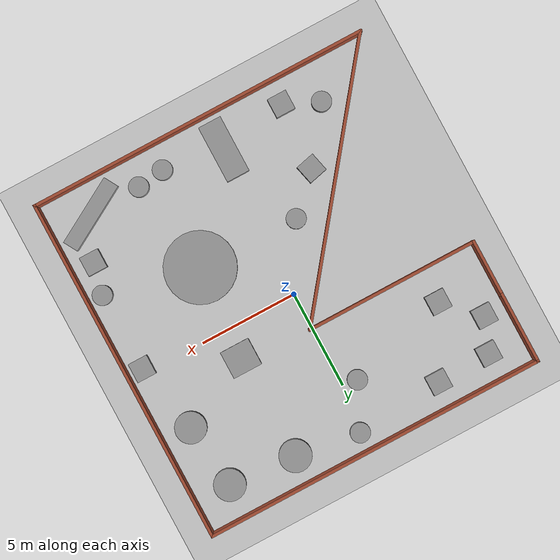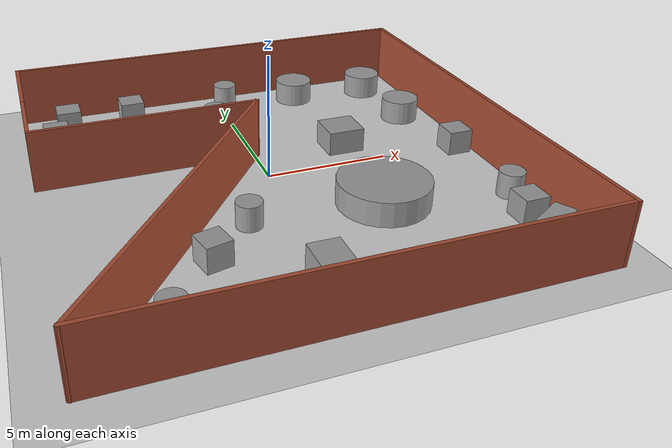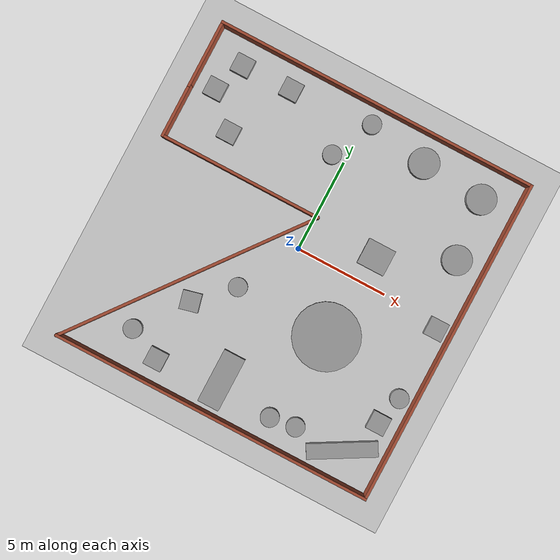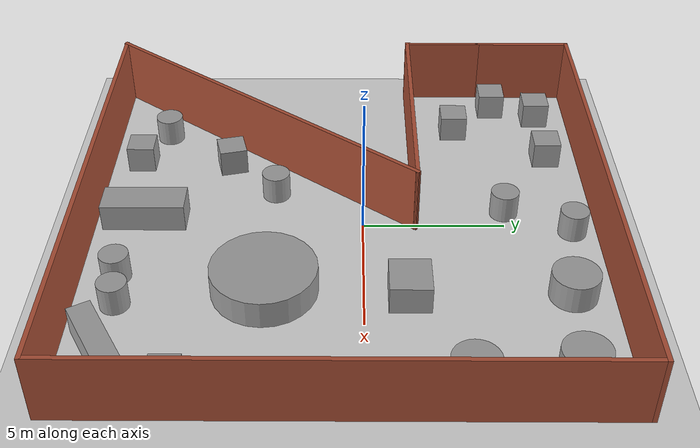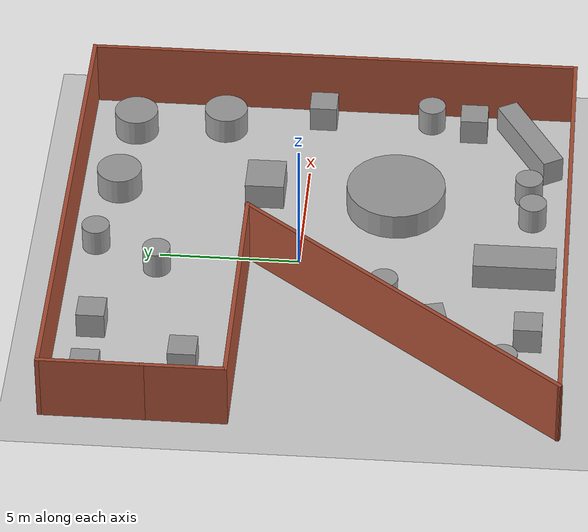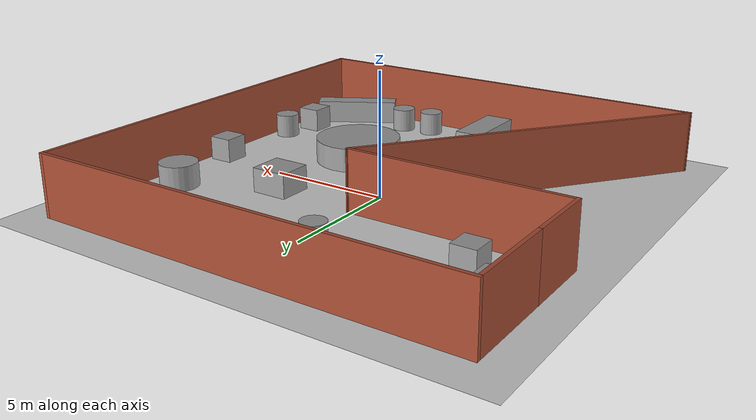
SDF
<sdf version="1.6">
 <world name="default">
  <light name="sun" type="directional">
   <pose>0 0 10 0 -0 0</pose>
   <diffuse>0.8 0.8 0.8 1</diffuse>
   <specular>0.2 0.2 0.2 1</specular>
   <attenuation>
    <range>1000</range>
    <constant>0.9</constant>
    <linear>0.01</linear>
    <quadratic>0.001</quadratic>
   </attenuation>
   <direction>-0.5 0.1 -0.9</direction>
  </light>
  <model name="ground_plane">
   <static>1</static>
   <link name="link">
    <collision name="collision">
     <geometry><plane><normal>0 0 1</normal><size>100 100</size></plane></geometry>
     <surface>
      <contact><collide_bitmask>65535</collide_bitmask></contact>
      <friction><ode><mu>100</mu><mu2>50</mu2></ode></friction>
     </surface>
    </collision>
    <visual name="visual">
     <cast_shadows>0</cast_shadows>
     <geometry><plane><normal>0 0 1</normal><size>100 100</size></plane></geometry>
     <material>
      <script><uri>file://media/materials/scripts/gazebo.material</uri><name>Gazebo/Grey</name></script>
     </material>
    </visual>
   </link>
  </model>
  <gravity>0 0 -9.8</gravity>
  <magnetic_field>6e-06 2.3e-05 -4.2e-05</magnetic_field>
  <atmosphere type="adiabatic"/>
  <physics name="default_physics" default="0" type="ode">
   <max_step_size>0.001</max_step_size>
   <real_time_factor>1</real_time_factor>
   <real_time_update_rate>1000</real_time_update_rate>
  </physics>
  <scene><ambient>0.4 0.4 0.4 1</ambient><background>0.7 0.7 0.7 1</background><shadows>1</shadows></scene>
  <spherical_coordinates>
   <surface_model>EARTH_WGS84</surface_model>
   <latitude_deg>0</latitude_deg>
   <longitude_deg>0</longitude_deg>
   <elevation>0</elevation>
   <heading_deg>0</heading_deg>
  </spherical_coordinates>
  <model name="env">
   <pose>0.066694 -0.64312 0 0 -0 0</pose>
   <link name="Wall_13">
    <collision name="Wall_13_Collision">
     <geometry><box><size>17.75 0.15 2.5</size></box></geometry>
     <pose>0 0 1.25 0 -0 0</pose>
    </collision>
    <visual name="Wall_13_Visual">
     <pose>0 0 1.25 0 -0 0</pose>
     <geometry><box><size>17.75 0.15 2.5</size></box></geometry>
     <material>
      <script><uri>file://media/materials/scripts/gazebo.material</uri><name>Gazebo/Bricks</name></script>
      <ambient>1 1 1 1</ambient>
     </material>
     <meta><layer>0</layer></meta>
    </visual>
    <pose>0.015117 -8.90988 0 0 -0 0</pose>
   </link>
   <link name="Wall_14">
    <collision name="Wall_14_Collision">
     <geometry><box><size>18 0.15 2.5</size></box></geometry>
     <pose>0 0 1.25 0 -0 0</pose>
    </collision>
    <visual name="Wall_14_Visual">
     <pose>0 0 1.25 0 -0 0</pose>
     <geometry><box><size>18 0.15 2.5</size></box></geometry>
     <material>
      <script><uri>file://media/materials/scripts/gazebo.material</uri><name>Gazebo/Bricks</name></script>
      <ambient>1 1 1 1</ambient>
     </material>
     <meta><layer>0</layer></meta>
    </visual>
    <pose>8.81512 0.015117 0 0 -0 1.5708</pose>
   </link>
   <link name="Wall_15">
    <collision name="Wall_15_Collision">
     <geometry><box><size>17.75 0.15 2.5</size></box></geometry>
     <pose>0 0 1.25 0 -0 0</pose>
    </collision>
    <visual name="Wall_15_Visual">
     <pose>0 0 1.25 0 -0 0</pose>
     <geometry><box><size>17.75 0.15 2.5</size></box></geometry>
     <material>
      <script><uri>file://media/materials/scripts/gazebo.material</uri><name>Gazebo/Bricks</name></script>
      <ambient>1 1 1 1</ambient>
     </material>
     <meta><layer>0</layer></meta>
    </visual>
    <pose>0.015117 8.94012 0 0 -0 3.14159</pose>
   </link>
   <link name="Wall_19">
    <collision name="Wall_19_Collision">
     <geometry><box><size>3.75 0.15 2.5</size></box></geometry>
     <pose>0 0 1.25 0 -0 0</pose>
    </collision>
    <visual name="Wall_19_Visual">
     <pose>0 0 1.25 0 -0 0</pose>
     <geometry><box><size>3.75 0.15 2.5</size></box></geometry>
     <material>
      <script><uri>file://media/materials/scripts/gazebo.material</uri><name>Gazebo/Bricks</name></script>
      <ambient>1 1 1 1</ambient>
     </material>
     <meta><layer>0</layer></meta>
    </visual>
    <pose>-8.78488 7.14012 0 0 0 -1.5708</pose>
   </link>
   <link name="Wall_20">
    <collision name="Wall_20_Collision">
     <geometry><box><size>3 0.15 2.5</size></box></geometry>
     <pose>0 0 1.25 0 -0 0</pose>
    </collision>
    <visual name="Wall_20_Visual">
     <pose>0 0 1.25 0 -0 0</pose>
     <geometry><box><size>3 0.15 2.5</size></box></geometry>
     <material>
      <script><uri>file://media/materials/scripts/gazebo.material</uri><name>Gazebo/Bricks</name></script>
      <ambient>1 1 1 1</ambient>
     </material>
     <meta><layer>0</layer></meta>
    </visual>
    <pose>-8.78488 3.91512 0 0 0 -1.5708</pose>
   </link>
   <link name="Wall_21">
    <collision name="Wall_21_Collision">
     <geometry><box><size>9 0.15 2.5</size></box></geometry>
     <pose>0 0 1.25 0 -0 0</pose>
    </collision>
    <visual name="Wall_21_Visual">
     <pose>0 0 1.25 0 -0 0</pose>
     <geometry><box><size>9 0.15 2.5</size></box></geometry>
     <material>
      <script><uri>file://media/materials/scripts/gazebo.material</uri><name>Gazebo/Bricks</name></script>
      <ambient>1 1 1 1</ambient>
     </material>
     <meta><layer>0</layer></meta>
    </visual>
    <pose>-4.35988 2.49012 0 0 -0 0</pose>
   </link>
   <link name="Wall_22">
    <collision name="Wall_22_Collision">
     <geometry><box><size>14.582 0.15 2.5</size></box></geometry>
     <pose>0 0 1.25 0 -0 0</pose>
    </collision>
    <visual name="Wall_22_Visual">
     <pose>0 0 1.25 0 -0 0</pose>
     <geometry><box><size>14.582 0.15 2.5</size></box></geometry>
     <material>
      <script><uri>file://media/materials/scripts/gazebo.material</uri><name>Gazebo/Bricks</name></script>
      <ambient>1 1 1 1</ambient>
     </material>
     <meta><layer>0</layer></meta>
    </visual>
    <pose>-4.35988 -3.20988 0 0 0 -2.23093</pose>
   </link>
   <static>1</static>
  </model>
  <model name="unit_cylinder">
   <pose>3.3566 -3.27352 0.499995 3e-06 -3e-06 -0.005707</pose>
   <link name="link">
    <inertial>
     <mass>1</mass>
     <inertia><ixx>0.145833</ixx><ixy>0</ixy><ixz>0</ixz><iyy>0.145833</iyy><iyz>0</iyz><izz>0.125</izz></inertia>
    </inertial>
    <collision name="collision">
     <geometry><cylinder><radius>1.79344</radius><length>1</length></cylinder></geometry>
    </collision>
    <visual name="visual">
     <geometry><cylinder><radius>1.79344</radius><length>1</length></cylinder></geometry>
     <material>
      <script><name>Gazebo/Grey</name><uri>file://media/materials/scripts/gazebo.material</uri></script>
     </material>
    </visual>
   </link>
  </model>
  <model name="unit_cylinder_0">
   <pose>3.61222 6.8569 0.5 0 -0 0</pose>
   <link name="link">
    <inertial>
     <mass>1</mass>
     <inertia><ixx>0.145833</ixx><ixy>0</ixy><ixz>0</ixz><iyy>0.145833</iyy><iyz>0</iyz><izz>0.125</izz></inertia>
    </inertial>
    <collision name="collision">
     <geometry><cylinder><radius>0.812735</radius><length>1</length></cylinder></geometry>
    </collision>
    <visual name="visual">
     <geometry><cylinder><radius>0.812735</radius><length>1</length></cylinder></geometry>
     <material>
      <script><name>Gazebo/Grey</name><uri>file://media/materials/scripts/gazebo.material</uri></script>
     </material>
    </visual>
   </link>
  </model>
  <model name="unit_cylinder_1">
   <pose>7.04894 6.59589 0.499995 -6e-06 5e-06 1e-06</pose>
   <link name="link">
    <inertial>
     <mass>1</mass>
     <inertia><ixx>0.145833</ixx><ixy>0</ixy><ixz>0</ixz><iyy>0.145833</iyy><iyz>0</iyz><izz>0.125</izz></inertia>
    </inertial>
    <collision name="collision">
     <geometry><cylinder><radius>0.797785</radius><length>1</length></cylinder></geometry>
    </collision>
    <visual name="visual">
     <geometry><cylinder><radius>0.797785</radius><length>1</length></cylinder></geometry>
     <material>
      <script><name>Gazebo/Grey</name><uri>file://media/materials/scripts/gazebo.material</uri></script>
     </material>
    </visual>
   </link>
  </model>
  <model name="unit_cylinder_2">
   <pose>7.40175 3.28491 0.499994 5e-06 -5e-06 -0</pose>
   <link name="link">
    <inertial>
     <mass>1</mass>
     <inertia><ixx>0.145833</ixx><ixy>0</ixy><ixz>0</ixz><iyy>0.145833</iyy><iyz>0</iyz><izz>0.125</izz></inertia>
    </inertial>
    <collision name="collision">
     <geometry><cylinder><radius>0.789865</radius><length>1</length></cylinder></geometry>
    </collision>
    <visual name="visual">
     <geometry><cylinder><radius>0.789865</radius><length>1</length></cylinder></geometry>
     <material>
      <script><name>Gazebo/Grey</name><uri>file://media/materials/scripts/gazebo.material</uri></script>
     </material>
    </visual>
   </link>
  </model>
  <model name="unit_box">
   <pose>-7.55814 5.23391 0.499995 1e-05 -0 0</pose>
   <link name="link">
    <inertial>
     <mass>1</mass>
     <inertia>
      <ixx>0.166667</ixx>
      <ixy>0</ixy>
      <ixz>0</ixz>
      <iyy>0.166667</iyy>
      <iyz>0</iyz>
      <izz>0.166667</izz>
     </inertia>
    </inertial>
    <collision name="collision"><geometry><box><size>1 1 1</size></box></geometry></collision>
    <visual name="visual">
     <geometry><box><size>1 1 1</size></box></geometry>
     <material>
      <script><name>Gazebo/Grey</name><uri>file://media/materials/scripts/gazebo.material</uri></script>
     </material>
    </visual>
   </link>
  </model>
  <model name="unit_box_0">
   <pose>-6.88266 6.93612 0.499995 0 -1e-05 0</pose>
   <link name="link">
    <inertial>
     <mass>1</mass>
     <inertia>
      <ixx>0.166667</ixx>
      <ixy>0</ixy>
      <ixz>0</ixz>
      <iyy>0.166667</iyy>
      <iyz>0</iyz>
      <izz>0.166667</izz>
     </inertia>
    </inertial>
    <collision name="collision"><geometry><box><size>1 1 1</size></box></geometry></collision>
    <visual name="visual">
     <geometry><box><size>1 1 1</size></box></geometry>
     <material>
      <script><name>Gazebo/Grey</name><uri>file://media/materials/scripts/gazebo.material</uri></script>
     </material>
    </visual>
   </link>
  </model>
  <model name="unit_box_1">
   <pose>-4.12204 6.9985 0.499995 1e-05 -0 0</pose>
   <link name="link">
    <inertial>
     <mass>1</mass>
     <inertia>
      <ixx>0.166667</ixx>
      <ixy>0</ixy>
      <ixz>0</ixz>
      <iyy>0.166667</iyy>
      <iyz>0</iyz>
      <izz>0.166667</izz>
     </inertia>
    </inertial>
    <collision name="collision"><geometry><box><size>1 1 1</size></box></geometry></collision>
    <visual name="visual">
     <geometry><box><size>1 1 1</size></box></geometry>
     <material>
      <script><name>Gazebo/Grey</name><uri>file://media/materials/scripts/gazebo.material</uri></script>
     </material>
    </visual>
   </link>
  </model>
  <model name="unit_cylinder_3">
   <pose>-5.54806 -7.53638 0.499993 -3e-06 -1e-06 -0</pose>
   <link name="link">
    <inertial>
     <mass>1</mass>
     <inertia><ixx>0.145833</ixx><ixy>0</ixy><ixz>0</ixz><iyy>0.145833</iyy><iyz>0</iyz><izz>0.125</izz></inertia>
    </inertial>
    <collision name="collision">
     <geometry><cylinder><radius>0.5</radius><length>1</length></cylinder></geometry>
    </collision>
    <visual name="visual">
     <geometry><cylinder><radius>0.5</radius><length>1</length></cylinder></geometry>
     <material>
      <script><name>Gazebo/Grey</name><uri>file://media/materials/scripts/gazebo.material</uri></script>
     </material>
    </visual>
   </link>
  </model>
  <model name="unit_cylinder_4">
   <pose>-1.81082 -3.15405 0.499997 4e-06 2e-06 -0</pose>
   <link name="link">
    <inertial>
     <mass>1</mass>
     <inertia><ixx>0.145833</ixx><ixy>0</ixy><ixz>0</ixz><iyy>0.145833</iyy><iyz>0</iyz><izz>0.125</izz></inertia>
    </inertial>
    <collision name="collision">
     <geometry><cylinder><radius>0.5</radius><length>1</length></cylinder></geometry>
    </collision>
    <visual name="visual">
     <geometry><cylinder><radius>0.5</radius><length>1</length></cylinder></geometry>
     <material>
      <script><name>Gazebo/Grey</name><uri>file://media/materials/scripts/gazebo.material</uri></script>
     </material>
    </visual>
   </link>
  </model>
  <model name="unit_box_2">
   <pose>6.77221 -8.00863 0.499995 -1e-06 -3e-06 0.518681</pose>
   <link name="link">
    <inertial>
     <mass>1</mass>
     <inertia>
      <ixx>0.166667</ixx>
      <ixy>0</ixy>
      <ixz>0</ixz>
      <iyy>0.166667</iyy>
      <iyz>0</iyz>
      <izz>0.166667</izz>
     </inertia>
    </inertial>
    <collision name="collision"><geometry><box><size>3.68131 0.796656 1</size></box></geometry></collision>
    <visual name="visual">
     <geometry><box><size>3.68131 0.796656 1</size></box></geometry>
     <material>
      <script><name>Gazebo/Grey</name><uri>file://media/materials/scripts/gazebo.material</uri></script>
     </material>
    </visual>
   </link>
  </model>
  <model name="unit_box_3">
   <pose>-5.92295 3.59916 0.499995 1e-05 -0 0</pose>
   <link name="link">
    <inertial>
     <mass>1</mass>
     <inertia>
      <ixx>0.166667</ixx>
      <ixy>0</ixy>
      <ixz>0</ixz>
      <iyy>0.166667</iyy>
      <iyz>0</iyz>
      <izz>0.166667</izz>
     </inertia>
    </inertial>
    <collision name="collision"><geometry><box><size>1 1 1</size></box></geometry></collision>
    <visual name="visual">
     <geometry><box><size>1 1 1</size></box></geometry>
     <material>
      <script><name>Gazebo/Grey</name><uri>file://media/materials/scripts/gazebo.material</uri></script>
     </material>
    </visual>
   </link>
  </model>
  <model name="unit_cylinder_5">
   <pose>-0.737037 5.05311 0.499993 -4e-06 -1e-06 0</pose>
   <link name="link">
    <inertial>
     <mass>1</mass>
     <inertia><ixx>0.145833</ixx><ixy>0</ixy><ixz>0</ixz><iyy>0.145833</iyy><iyz>0</iyz><izz>0.125</izz></inertia>
    </inertial>
    <collision name="collision">
     <geometry><cylinder><radius>0.5</radius><length>1</length></cylinder></geometry>
    </collision>
    <visual name="visual">
     <geometry><cylinder><radius>0.5</radius><length>1</length></cylinder></geometry>
     <material>
      <script><name>Gazebo/Grey</name><uri>file://media/materials/scripts/gazebo.material</uri></script>
     </material>
    </visual>
   </link>
  </model>
  <model name="unit_box_4">
   <pose>-0.329031 -7.73267 0.5 0 -1e-06 0</pose>
   <link name="link">
    <inertial>
     <mass>1</mass>
     <inertia>
      <ixx>0.166667</ixx>
      <ixy>0</ixy>
      <ixz>0</ixz>
      <iyy>0.166667</iyy>
      <iyz>0</iyz>
      <izz>0.166667</izz>
     </inertia>
    </inertial>
    <collision name="collision"><geometry><box><size>1.19104 2.94632 1</size></box></geometry></collision>
    <visual name="visual">
     <geometry><box><size>1.19104 2.94632 1</size></box></geometry>
     <material>
      <script><name>Gazebo/Grey</name><uri>file://media/materials/scripts/gazebo.material</uri></script>
     </material>
    </visual>
   </link>
  </model>
  <model name="unit_box_5">
   <pose>3.70116 1.49956 0.499995 -7e-06 -0 -4e-06</pose>
   <link name="link">
    <inertial>
     <mass>1</mass>
     <inertia>
      <ixx>0.166667</ixx>
      <ixy>0</ixy>
      <ixz>0</ixz>
      <iyy>0.166667</iyy>
      <iyz>0</iyz>
      <izz>0.166667</izz>
     </inertia>
    </inertial>
    <collision name="collision"><geometry><box><size>1.50946 1.40586 1</size></box></geometry></collision>
    <visual name="visual">
     <geometry><box><size>1.50946 1.40586 1</size></box></geometry>
     <material>
      <script><name>Gazebo/Grey</name><uri>file://media/materials/scripts/gazebo.material</uri></script>
     </material>
    </visual>
   </link>
  </model>
  <model name="unit_box_6">
   <pose>8.11709 -0.305939 0.499995 -1e-05 0 0</pose>
   <link name="link">
    <inertial>
     <mass>1</mass>
     <inertia>
      <ixx>0.166667</ixx>
      <ixy>0</ixy>
      <ixz>0</ixz>
      <iyy>0.166667</iyy>
      <iyz>0</iyz>
      <izz>0.166667</izz>
     </inertia>
    </inertial>
    <collision name="collision"><geometry><box><size>1 1 1</size></box></geometry></collision>
    <visual name="visual">
     <geometry><box><size>1 1 1</size></box></geometry>
     <material>
      <script><name>Gazebo/Grey</name><uri>file://media/materials/scripts/gazebo.material</uri></script>
     </material>
    </visual>
   </link>
  </model>
  <model name="unit_cylinder_6">
   <pose>8.1269 -4.32272 0.499992 -3e-06 4e-06 0</pose>
   <link name="link">
    <inertial>
     <mass>1</mass>
     <inertia><ixx>0.145833</ixx><ixy>0</ixy><ixz>0</ixz><iyy>0.145833</iyy><iyz>0</iyz><izz>0.125</izz></inertia>
    </inertial>
    <collision name="collision">
     <geometry><cylinder><radius>0.5</radius><length>1</length></cylinder></geometry>
    </collision>
    <visual name="visual">
     <geometry><cylinder><radius>0.5</radius><length>1</length></cylinder></geometry>
     <material>
      <script><name>Gazebo/Grey</name><uri>file://media/materials/scripts/gazebo.material</uri></script>
     </material>
    </visual>
   </link>
  </model>
  <model name="unit_cylinder_7">
   <pose>2.73808 -8.26015 0.499998 3e-06 -3e-06 0</pose>
   <link name="link">
    <inertial>
     <mass>1</mass>
     <inertia><ixx>0.145833</ixx><ixy>0</ixy><ixz>0</ixz><iyy>0.145833</iyy><iyz>0</iyz><izz>0.125</izz></inertia>
    </inertial>
    <collision name="collision">
     <geometry><cylinder><radius>0.5</radius><length>1</length></cylinder></geometry>
    </collision>
    <visual name="visual">
     <geometry><cylinder><radius>0.5</radius><length>1</length></cylinder></geometry>
     <material>
      <script><name>Gazebo/Grey</name><uri>file://media/materials/scripts/gazebo.material</uri></script>
     </material>
    </visual>
   </link>
  </model>
  <model name="unit_box_7">
   <pose>-3.78407 -8.33983 0.499995 0 1e-05 0</pose>
   <link name="link">
    <inertial>
     <mass>1</mass>
     <inertia>
      <ixx>0.166667</ixx>
      <ixy>0</ixy>
      <ixz>0</ixz>
      <iyy>0.166667</iyy>
      <iyz>0</iyz>
      <izz>0.166667</izz>
     </inertia>
    </inertial>
    <collision name="collision"><geometry><box><size>1 1 1</size></box></geometry></collision>
    <visual name="visual">
     <geometry><box><size>1 1 1</size></box></geometry>
     <material>
      <script><name>Gazebo/Grey</name><uri>file://media/materials/scripts/gazebo.material</uri></script>
     </material>
    </visual>
   </link>
  </model>
  <model name="unit_cylinder_8">
   <pose>0.34576 7.35552 0.499992 -3e-06 4e-06 0</pose>
   <link name="link">
    <inertial>
     <mass>1</mass>
     <inertia><ixx>0.145833</ixx><ixy>0</ixy><ixz>0</ixz><iyy>0.145833</iyy><iyz>0</iyz><izz>0.125</izz></inertia>
    </inertial>
    <collision name="collision">
     <geometry><cylinder><radius>0.5</radius><length>1</length></cylinder></geometry>
    </collision>
    <visual name="visual">
     <geometry><cylinder><radius>0.5</radius><length>1</length></cylinder></geometry>
     <material>
      <script><name>Gazebo/Grey</name><uri>file://media/materials/scripts/gazebo.material</uri></script>
     </material>
    </visual>
   </link>
  </model>
  <model name="unit_cylinder_9">
   <pose>4.12449 -8.0776 0.499998 3e-06 -4e-06 0</pose>
   <link name="link">
    <inertial>
     <mass>1</mass>
     <inertia><ixx>0.145833</ixx><ixy>0</ixy><ixz>0</ixz><iyy>0.145833</iyy><iyz>0</iyz><izz>0.125</izz></inertia>
    </inertial>
    <collision name="collision">
     <geometry><cylinder><radius>0.5</radius><length>1</length></cylinder></geometry>
    </collision>
    <visual name="visual">
     <geometry><cylinder><radius>0.5</radius><length>1</length></cylinder></geometry>
     <material>
      <script><name>Gazebo/Grey</name><uri>file://media/materials/scripts/gazebo.material</uri></script>
     </material>
    </visual>
   </link>
  </model>
  <model name="unit_box_8">
   <pose>7.76678 -5.91472 0.499995 0 1e-05 0</pose>
   <link name="link">
    <inertial>
     <mass>1</mass>
     <inertia>
      <ixx>0.166667</ixx>
      <ixy>0</ixy>
      <ixz>0</ixz>
      <iyy>0.166667</iyy>
      <iyz>0</iyz>
      <izz>0.166667</izz>
     </inertia>
    </inertial>
    <collision name="collision"><geometry><box><size>1 1 1</size></box></geometry></collision>
    <visual name="visual">
     <geometry><box><size>1 1 1</size></box></geometry>
     <material>
      <script><name>Gazebo/Grey</name><uri>file://media/materials/scripts/gazebo.material</uri></script>
     </material>
    </visual>
   </link>
  </model>
  <model name="unit_box_9">
   <pose>-3.60301 -4.9238 0.5 0 -0 0.235426</pose>
   <link name="link">
    <inertial>
     <mass>1</mass>
     <inertia>
      <ixx>0.166667</ixx>
      <ixy>0</ixy>
      <ixz>0</ixz>
      <iyy>0.166667</iyy>
      <iyz>0</iyz>
      <izz>0.166667</izz>
     </inertia>
    </inertial>
    <collision name="collision"><geometry><box><size>1 1 1</size></box></geometry></collision>
    <visual name="visual">
     <geometry><box><size>1 1 1</size></box></geometry>
     <material>
      <script><name>Gazebo/Grey</name><uri>file://media/materials/scripts/gazebo.material</uri></script>
     </material>
    </visual>
   </link>
  </model>
 </world>
</sdf>
